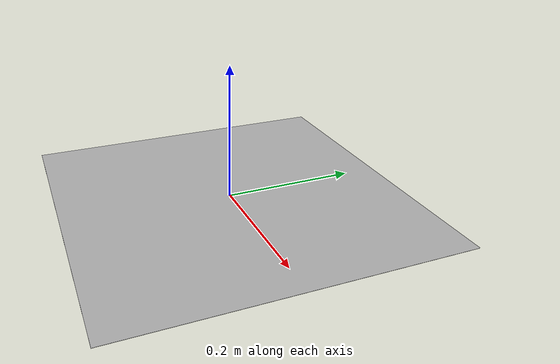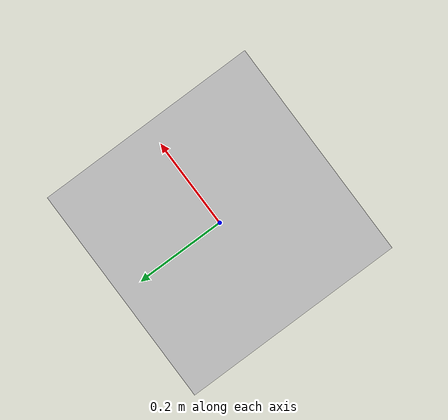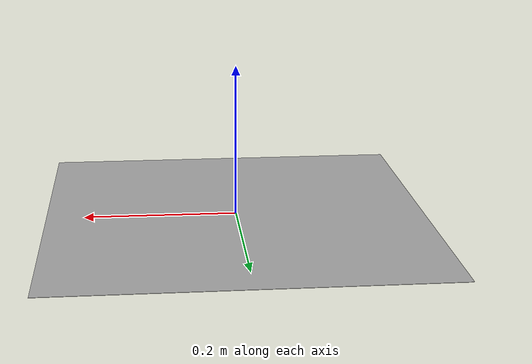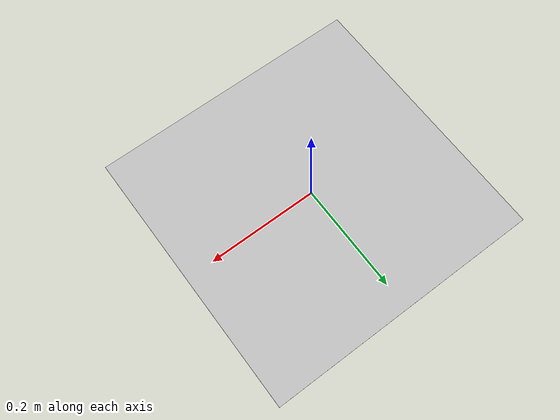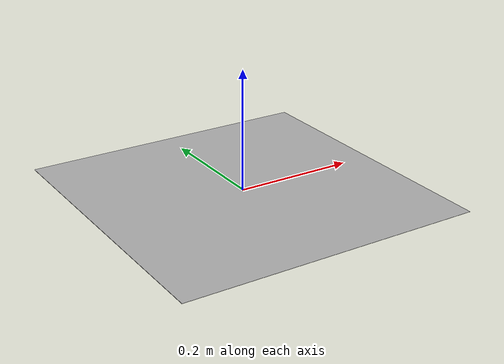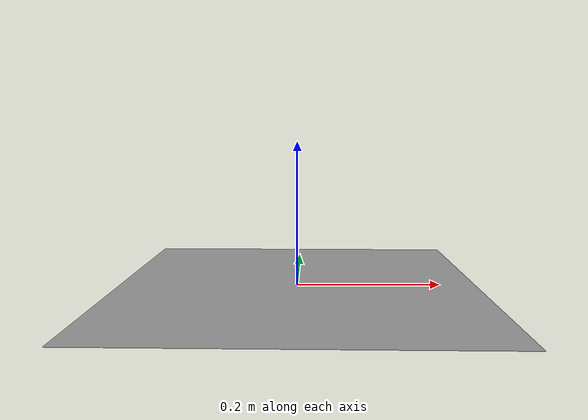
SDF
<?xml version='1.0'?>
<sdf version='1.6'>
  <model name='Apriltag36_11_00000'>
    <link name="link">
      <inertial>
        <pose>0 0 0 0 0 0</pose>
        <mass>0.0</mass>
        <inertia>
          <ixx>0.0001</ixx>
          <ixy>0</ixy>
          <ixz>0</ixz>
          <iyy>0.0001</iyy>
          <iyz>0</iyz>
          <izz>0.0001</izz>
        </inertia>
      </inertial>
      <collision name="collision">
        <pose>0 0 0 0 0 0</pose>
        <geometry>
          <mesh>
            <uri>model://Apriltag36_11_00000/meshes/tag36_11_00000.dae</uri>
            <scale>5 5 5</scale>
          </mesh>
        </geometry>
        <surface>
          <friction>
            <ode>
              <mu>1.0</mu>
              <mu2>1.0</mu2>
            </ode>
          </friction>
          <contact>
            <ode>
              <kp>10000000.0</kp>
              <kd>1.0</kd>
              <min_depth>0.001</min_depth>
              <max_vel>0.1</max_vel>
            </ode>
          </contact>
        </surface>
      </collision>
      <visual name="visual">
        <pose>0 0 0 0 0 0</pose>
        <geometry>
          <mesh>
            <uri>model://Apriltag36_11_00000/meshes/tag36_11_00000.dae</uri>
            <scale>5 5 5</scale>
          </mesh>
        </geometry>
      </visual>
    </link>
  </model>
</sdf>
